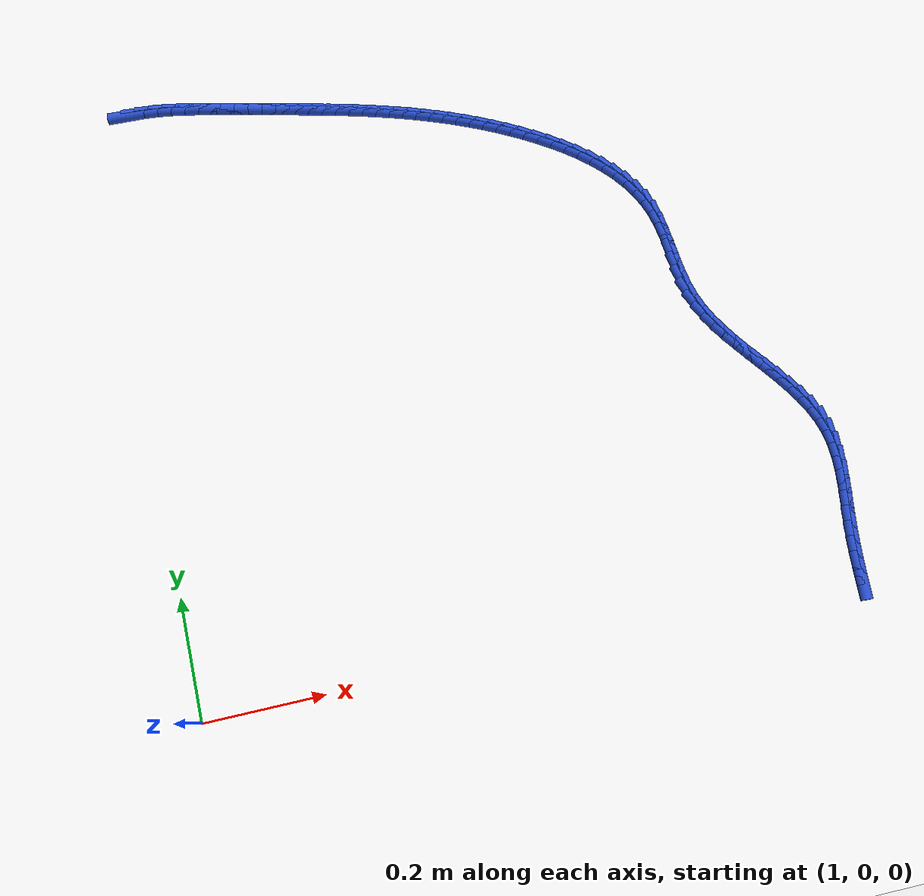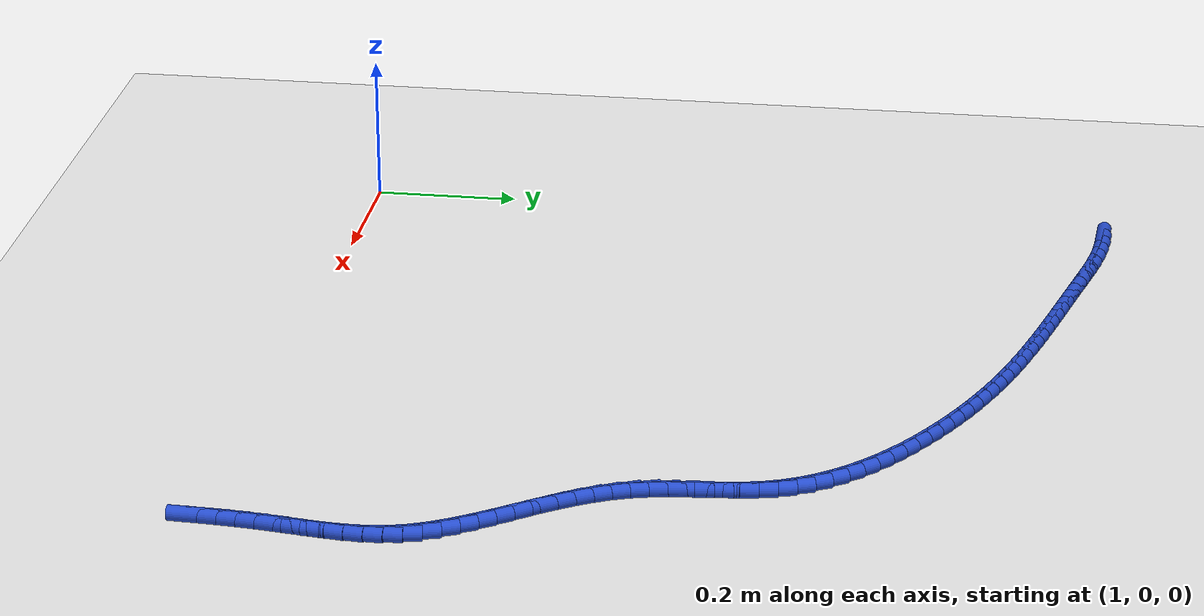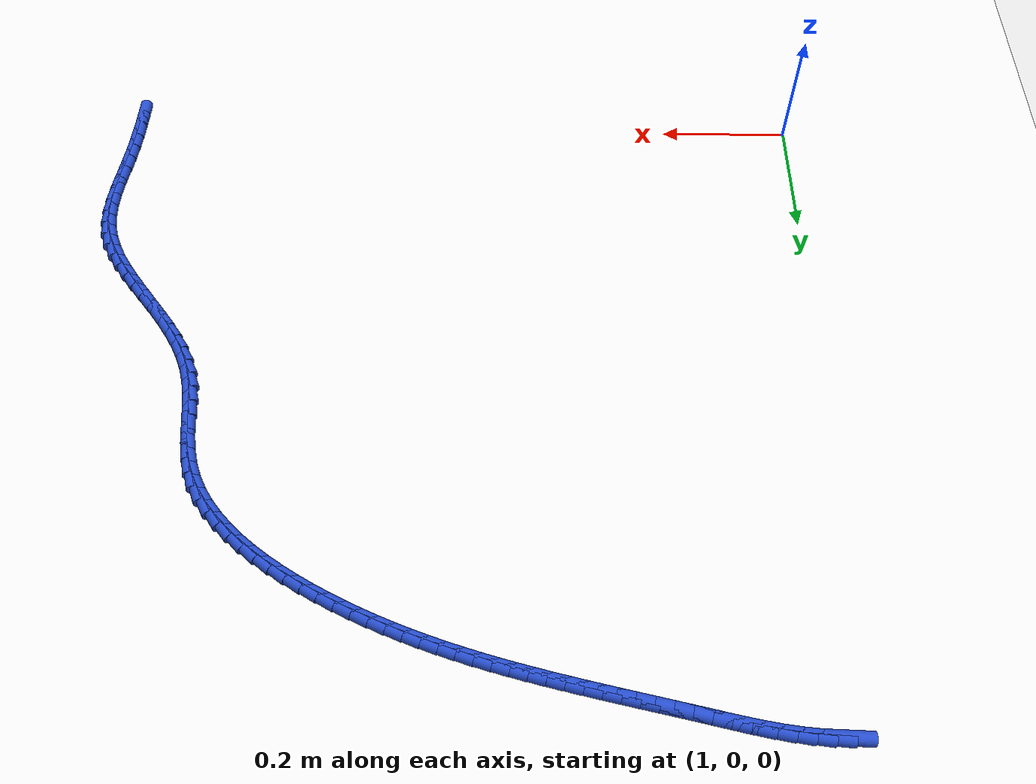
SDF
<sdf version="1.6">
 <world name="default">
  <model name="ground_plane">
   <static>1</static>
   <link name="link">
    <collision name="collision">
     <geometry><plane><normal>0 0 1</normal><size>100 100</size></plane></geometry>
     <surface><friction><ode><mu>100</mu><mu2>50</mu2></ode></friction></surface>
    </collision>
    <visual name="visual">
     <cast_shadows>0</cast_shadows>
     <geometry><plane><normal>0 0 1</normal><size>100 100</size></plane></geometry>
     <material>
      <script><uri>file://media/materials/scripts/gazebo.material</uri><name>Gazebo/WhiteGlow</name></script>
     </material>
    </visual>
   </link>
  </model>
  <model name="line">
   <link name="link_68">
    <pose>1.0566559451986737 1.056539879496222 0.01 0 1.57 -0.03050722279257772</pose>
    <collision name="collision">
     <geometry><cylinder><radius>0.01</radius><length>0.08</length></cylinder></geometry>
    </collision>
    <visual name="visual">
     <material>
      <script><name>Gazebo/Blue</name><uri>file://media/materials/scripts/gazebo.material</uri></script>
     </material>
     <geometry><cylinder><radius>0.01</radius><length>0.08</length></cylinder></geometry>
    </visual>
   </link>
   <link name="link_69">
    <pose>1.080787537617207 1.0558034631571953 0.01 0 1.57 -0.08710678217348848</pose>
    <collision name="collision">
     <geometry><cylinder><radius>0.01</radius><length>0.08</length></cylinder></geometry>
    </collision>
    <visual name="visual">
     <material>
      <script><name>Gazebo/Blue</name><uri>file://media/materials/scripts/gazebo.material</uri></script>
     </material>
     <geometry><cylinder><radius>0.01</radius><length>0.08</length></cylinder></geometry>
    </visual>
   </link>
   <link name="link_70">
    <pose>1.1047899032811292 1.0537073902544252 0.01 0 1.57 -0.13543388009078403</pose>
    <collision name="collision">
     <geometry><cylinder><radius>0.01</radius><length>0.08</length></cylinder></geometry>
    </collision>
    <visual name="visual">
     <material>
      <script><name>Gazebo/Blue</name><uri>file://media/materials/scripts/gazebo.material</uri></script>
     </material>
     <geometry><cylinder><radius>0.01</radius><length>0.08</length></cylinder></geometry>
    </visual>
   </link>
   <link name="link_71">
    <pose>1.1286754459439066 1.0504525537212743 0.01 0 1.57 -0.17358100366658533</pose>
    <collision name="collision">
     <geometry><cylinder><radius>0.01</radius><length>0.08</length></cylinder></geometry>
    </collision>
    <visual name="visual">
     <material>
      <script><name>Gazebo/Blue</name><uri>file://media/materials/scripts/gazebo.material</uri></script>
     </material>
     <geometry><cylinder><radius>0.01</radius><length>0.08</length></cylinder></geometry>
    </visual>
   </link>
   <link name="link_72">
    <pose>1.1524690013365628 1.046280457827342 0.01 0 1.57 -0.20154885319310645</pose>
    <collision name="collision">
     <geometry><cylinder><radius>0.01</radius><length>0.08</length></cylinder></geometry>
    </collision>
    <visual name="visual">
     <material>
      <script><name>Gazebo/Blue</name><uri>file://media/materials/scripts/gazebo.material</uri></script>
     </material>
     <geometry><cylinder><radius>0.01</radius><length>0.08</length></cylinder></geometry>
    </visual>
   </link>
   <link name="link_73">
    <pose>1.1761954051901238 1.0414326068422268 0.01 0 1.57 -0.21943212921030308</pose>
    <collision name="collision">
     <geometry><cylinder><radius>0.01</radius><length>0.08</length></cylinder></geometry>
    </collision>
    <visual name="visual">
     <material>
      <script><name>Gazebo/Blue</name><uri>file://media/materials/scripts/gazebo.material</uri></script>
     </material>
     <geometry><cylinder><radius>0.01</radius><length>0.08</length></cylinder></geometry>
    </visual>
   </link>
   <link name="link_74">
    <pose>1.1998794932356127 1.0361505050355284 0.01 0 1.57 -0.22733328139425454</pose>
    <collision name="collision">
     <geometry><cylinder><radius>0.01</radius><length>0.08</length></cylinder></geometry>
    </collision>
    <visual name="visual">
     <material>
      <script><name>Gazebo/Blue</name><uri>file://media/materials/scripts/gazebo.material</uri></script>
     </material>
     <geometry><cylinder><radius>0.01</radius><length>0.08</length></cylinder></geometry>
    </visual>
   </link>
   <link name="link_75">
    <pose>1.2235461012040543 1.0306756566768456 0.01 0 1.57 -0.2263782300799881</pose>
    <collision name="collision">
     <geometry><cylinder><radius>0.01</radius><length>0.08</length></cylinder></geometry>
    </collision>
    <visual name="visual">
     <material>
      <script><name>Gazebo/Blue</name><uri>file://media/materials/scripts/gazebo.material</uri></script>
     </material>
     <geometry><cylinder><radius>0.01</radius><length>0.08</length></cylinder></geometry>
    </visual>
   </link>
   <link name="link_76">
    <pose>1.2472163113289658 1.0252237858002047 0.01 0 1.57 -0.22391142568460923</pose>
    <collision name="collision">
     <geometry><cylinder><radius>0.01</radius><length>0.08</length></cylinder></geometry>
    </collision>
    <visual name="visual">
     <material>
      <script><name>Gazebo/Blue</name><uri>file://media/materials/scripts/gazebo.material</uri></script>
     </material>
     <geometry><cylinder><radius>0.01</radius><length>0.08</length></cylinder></geometry>
    </visual>
   </link>
   <link name="link_77">
    <pose>1.2708854351372145 1.019833614886543 0.01 0 1.57 -0.2230144385574613</pose>
    <collision name="collision">
     <geometry><cylinder><radius>0.01</radius><length>0.08</length></cylinder></geometry>
    </collision>
    <visual name="visual">
     <material>
      <script><name>Gazebo/Blue</name><uri>file://media/materials/scripts/gazebo.material</uri></script>
     </material>
     <geometry><cylinder><radius>0.01</radius><length>0.08</length></cylinder></geometry>
    </visual>
   </link>
   <link name="link_78">
    <pose>1.2945379618577029 1.0144695353721083 0.01 0 1.57 -0.22370138353793034</pose>
    <collision name="collision">
     <geometry><cylinder><radius>0.01</radius><length>0.08</length></cylinder></geometry>
    </collision>
    <visual name="visual">
     <material>
      <script><name>Gazebo/Blue</name><uri>file://media/materials/scripts/gazebo.material</uri></script>
     </material>
     <geometry><cylinder><radius>0.01</radius><length>0.08</length></cylinder></geometry>
    </visual>
   </link>
   <link name="link_79">
    <pose>1.318158343468812 1.009095682844519 0.01 0 1.57 -0.22597860267105793</pose>
    <collision name="collision">
     <geometry><cylinder><radius>0.01</radius><length>0.08</length></cylinder></geometry>
    </collision>
    <visual name="visual">
     <material>
      <script><name>Gazebo/Blue</name><uri>file://media/materials/scripts/gazebo.material</uri></script>
     </material>
     <geometry><cylinder><radius>0.01</radius><length>0.08</length></cylinder></geometry>
    </visual>
   </link>
   <link name="link_80">
    <pose>1.3417310319489253 1.0036761928913946 0.01 0 1.57 -0.2298552572701455</pose>
    <collision name="collision">
     <geometry><cylinder><radius>0.01</radius><length>0.08</length></cylinder></geometry>
    </collision>
    <visual name="visual">
     <material>
      <script><name>Gazebo/Blue</name><uri>file://media/materials/scripts/gazebo.material</uri></script>
     </material>
     <geometry><cylinder><radius>0.01</radius><length>0.08</length></cylinder></geometry>
    </visual>
   </link>
   <link name="link_81">
    <pose>1.3652404792764232 0.9981752011003525 0.01 0 1.57 -0.23534320088937022</pose>
    <collision name="collision">
     <geometry><cylinder><radius>0.01</radius><length>0.08</length></cylinder></geometry>
    </collision>
    <visual name="visual">
     <material>
      <script><name>Gazebo/Blue</name><uri>file://media/materials/scripts/gazebo.material</uri></script>
     </material>
     <geometry><cylinder><radius>0.01</radius><length>0.08</length></cylinder></geometry>
    </visual>
   </link>
   <link name="link_82">
    <pose>1.38867113742969 0.9925568430590116 0.01 0 1.57 -0.24245673517450567</pose>
    <collision name="collision">
     <geometry><cylinder><radius>0.01</radius><length>0.08</length></cylinder></geometry>
    </collision>
    <visual name="visual">
     <material>
      <script><name>Gazebo/Blue</name><uri>file://media/materials/scripts/gazebo.material</uri></script>
     </material>
     <geometry><cylinder><radius>0.01</radius><length>0.08</length></cylinder></geometry>
    </visual>
   </link>
   <link name="link_83">
    <pose>1.4120074583871063 0.9867852543549904 0.01 0 1.57 -0.25121223921615465</pose>
    <collision name="collision">
     <geometry><cylinder><radius>0.01</radius><length>0.08</length></cylinder></geometry>
    </collision>
    <visual name="visual">
     <material>
      <script><name>Gazebo/Blue</name><uri>file://media/materials/scripts/gazebo.material</uri></script>
     </material>
     <geometry><cylinder><radius>0.01</radius><length>0.08</length></cylinder></geometry>
    </visual>
   </link>
   <link name="link_84">
    <pose>1.4352338941270542 0.9808245705759071 0.01 0 1.57 -0.2616369609576843</pose>
    <collision name="collision">
     <geometry><cylinder><radius>0.01</radius><length>0.08</length></cylinder></geometry>
    </collision>
    <visual name="visual">
     <material>
      <script><name>Gazebo/Blue</name><uri>file://media/materials/scripts/gazebo.material</uri></script>
     </material>
     <geometry><cylinder><radius>0.01</radius><length>0.08</length></cylinder></geometry>
    </visual>
   </link>
   <link name="link_85">
    <pose>1.458337717522701 0.9746379416914022 0.01 0 1.57 -0.27378797087168233</pose>
    <collision name="collision">
     <geometry><cylinder><radius>0.01</radius><length>0.08</length></cylinder></geometry>
    </collision>
    <visual name="visual">
     <material>
      <script><name>Gazebo/Blue</name><uri>file://media/materials/scripts/gazebo.material</uri></script>
     </material>
     <geometry><cylinder><radius>0.01</radius><length>0.08</length></cylinder></geometry>
    </visual>
   </link>
   <link name="link_86">
    <pose>1.4813216268809255 0.9681831280391188 0.01 0 1.57 -0.2876615101169753</pose>
    <collision name="collision">
     <geometry><cylinder><radius>0.01</radius><length>0.08</length></cylinder></geometry>
    </collision>
    <visual name="visual">
     <material>
      <script><name>Gazebo/Blue</name><uri>file://media/materials/scripts/gazebo.material</uri></script>
     </material>
     <geometry><cylinder><radius>0.01</radius><length>0.08</length></cylinder></geometry>
    </visual>
   </link>
   <link name="link_87">
    <pose>1.50419356655007 0.9614160569947604 0.01 0 1.57 -0.30322206928134615</pose>
    <collision name="collision">
     <geometry><cylinder><radius>0.01</radius><length>0.08</length></cylinder></geometry>
    </collision>
    <visual name="visual">
     <material>
      <script><name>Gazebo/Blue</name><uri>file://media/materials/scripts/gazebo.material</uri></script>
     </material>
     <geometry><cylinder><radius>0.01</radius><length>0.08</length></cylinder></geometry>
    </visual>
   </link>
   <link name="link_88">
    <pose>1.52696148523075 0.9542926544133484 0.01 0 1.57 -0.3204211605542874</pose>
    <collision name="collision">
     <geometry><cylinder><radius>0.01</radius><length>0.08</length></cylinder></geometry>
    </collision>
    <visual name="visual">
     <material>
      <script><name>Gazebo/Blue</name><uri>file://media/materials/scripts/gazebo.material</uri></script>
     </material>
     <geometry><cylinder><radius>0.01</radius><length>0.08</length></cylinder></geometry>
    </visual>
   </link>
   <link name="link_89">
    <pose>1.5496333316235822 0.9467688461499053 0.01 0 1.57 -0.33919663083866486</pose>
    <collision name="collision">
     <geometry><cylinder><radius>0.01</radius><length>0.08</length></cylinder></geometry>
    </collision>
    <visual name="visual">
     <material>
      <script><name>Gazebo/Blue</name><uri>file://media/materials/scripts/gazebo.material</uri></script>
     </material>
     <geometry><cylinder><radius>0.01</radius><length>0.08</length></cylinder></geometry>
    </visual>
   </link>
   <link name="link_90">
    <pose>1.5722170544291822 0.9388005580594526 0.01 0 1.57 -0.3594721964824236</pose>
    <collision name="collision">
     <geometry><cylinder><radius>0.01</radius><length>0.08</length></cylinder></geometry>
    </collision>
    <visual name="visual">
     <material>
      <script><name>Gazebo/Blue</name><uri>file://media/materials/scripts/gazebo.material</uri></script>
     </material>
     <geometry><cylinder><radius>0.01</radius><length>0.08</length></cylinder></geometry>
    </visual>
   </link>
   <link name="link_91">
    <pose>1.5947206023481675 0.9303437159970125 0.01 0 1.57 -0.3811572939427457</pose>
    <collision name="collision">
     <geometry><cylinder><radius>0.01</radius><length>0.08</length></cylinder></geometry>
    </collision>
    <visual name="visual">
     <material>
      <script><name>Gazebo/Blue</name><uri>file://media/materials/scripts/gazebo.material</uri></script>
     </material>
     <geometry><cylinder><radius>0.01</radius><length>0.08</length></cylinder></geometry>
    </visual>
   </link>
   <link name="link_92">
    <pose>1.6171519240811534 0.9213542458176074 0.01 0 1.57 -0.4041473201245102</pose>
    <collision name="collision">
     <geometry><cylinder><radius>0.01</radius><length>0.08</length></cylinder></geometry>
    </collision>
    <visual name="visual">
     <material>
      <script><name>Gazebo/Blue</name><uri>file://media/materials/scripts/gazebo.material</uri></script>
     </material>
     <geometry><cylinder><radius>0.01</radius><length>0.08</length></cylinder></geometry>
    </visual>
   </link>
   <link name="link_93">
    <pose>1.639518968328756 0.9117880733762588 0.01 0 1.57 -0.4283243215328003</pose>
    <collision name="collision">
     <geometry><cylinder><radius>0.01</radius><length>0.08</length></cylinder></geometry>
    </collision>
    <visual name="visual">
     <material>
      <script><name>Gazebo/Blue</name><uri>file://media/materials/scripts/gazebo.material</uri></script>
     </material>
     <geometry><cylinder><radius>0.01</radius><length>0.08</length></cylinder></geometry>
    </visual>
   </link>
   <link name="link_94">
    <pose>1.6618296837915922 0.9016011245279891 0.01 0 1.57 -0.45355816817101086</pose>
    <collision name="collision">
     <geometry><cylinder><radius>0.01</radius><length>0.08</length></cylinder></geometry>
    </collision>
    <visual name="visual">
     <material>
      <script><name>Gazebo/Blue</name><uri>file://media/materials/scripts/gazebo.material</uri></script>
     </material>
     <geometry><cylinder><radius>0.01</radius><length>0.08</length></cylinder></geometry>
    </visual>
   </link>
   <link name="link_95">
    <pose>1.6840920191702784 0.8907493251278199 0.01 0 1.57 -0.47970821731827806</pose>
    <collision name="collision">
     <geometry><cylinder><radius>0.01</radius><length>0.08</length></cylinder></geometry>
    </collision>
    <visual name="visual">
     <material>
      <script><name>Gazebo/Blue</name><uri>file://media/materials/scripts/gazebo.material</uri></script>
     </material>
     <geometry><cylinder><radius>0.01</radius><length>0.08</length></cylinder></geometry>
    </visual>
   </link>
   <link name="link_96">
    <pose>1.706313923165431 0.8791886010307737 0.01 0 1.57 -0.5067485622339222</pose>
    <collision name="collision">
     <geometry><cylinder><radius>0.01</radius><length>0.08</length></cylinder></geometry>
    </collision>
    <visual name="visual">
     <material>
      <script><name>Gazebo/Blue</name><uri>file://media/materials/scripts/gazebo.material</uri></script>
     </material>
     <geometry><cylinder><radius>0.01</radius><length>0.08</length></cylinder></geometry>
    </visual>
   </link>
   <link name="link_97">
    <pose>1.7284955259138652 0.8668756444614445 0.01 0 1.57 -0.5366111621637293</pose>
    <collision name="collision">
     <geometry><cylinder><radius>0.01</radius><length>0.08</length></cylinder></geometry>
    </collision>
    <visual name="visual">
     <material>
      <script><name>Gazebo/Blue</name><uri>file://media/materials/scripts/gazebo.material</uri></script>
     </material>
     <geometry><cylinder><radius>0.01</radius><length>0.08</length></cylinder></geometry>
    </visual>
   </link>
   <link name="link_98">
    <pose>1.7505122727502023 0.8537793691522316 0.01 0 1.57 -0.5712600358950919</pose>
    <collision name="collision">
     <geometry><cylinder><radius>0.01</radius><length>0.08</length></cylinder></geometry>
    </collision>
    <visual name="visual">
     <material>
      <script><name>Gazebo/Blue</name><uri>file://media/materials/scripts/gazebo.material</uri></script>
     </material>
     <geometry><cylinder><radius>0.01</radius><length>0.08</length></cylinder></geometry>
    </visual>
   </link>
   <link name="link_99">
    <pose>1.7721395314804569 0.8398784983574292 0.01 0 1.57 -0.6113404560718967</pose>
    <collision name="collision">
     <geometry><cylinder><radius>0.01</radius><length>0.08</length></cylinder></geometry>
    </collision>
    <visual name="visual">
     <material>
      <script><name>Gazebo/Blue</name><uri>file://media/materials/scripts/gazebo.material</uri></script>
     </material>
     <geometry><cylinder><radius>0.01</radius><length>0.08</length></cylinder></geometry>
    </visual>
   </link>
   <link name="link_100">
    <pose>1.7931498474855163 0.8251520319832579 0.01 0 1.57 -0.6575875683192935</pose>
    <collision name="collision">
     <geometry><cylinder><radius>0.01</radius><length>0.08</length></cylinder></geometry>
    </collision>
    <visual name="visual">
     <material>
      <script><name>Gazebo/Blue</name><uri>file://media/materials/scripts/gazebo.material</uri></script>
     </material>
     <geometry><cylinder><radius>0.01</radius><length>0.08</length></cylinder></geometry>
    </visual>
   </link>
   <link name="link_101">
    <pose>1.8133157661462664 0.809578969935938 0.01 0 1.57 -0.7108656102291798</pose>
    <collision name="collision">
     <geometry><cylinder><radius>0.01</radius><length>0.08</length></cylinder></geometry>
    </collision>
    <visual name="visual">
     <material>
      <script><name>Gazebo/Blue</name><uri>file://media/materials/scripts/gazebo.material</uri></script>
     </material>
     <geometry><cylinder><radius>0.01</radius><length>0.08</length></cylinder></geometry>
    </visual>
   </link>
   <link name="link_102">
    <pose>1.8324098328435947 0.7931383121216901 0.01 0 1.57 -0.7721457147903141</pose>
    <collision name="collision">
     <geometry><cylinder><radius>0.01</radius><length>0.08</length></cylinder></geometry>
    </collision>
    <visual name="visual">
     <material>
      <script><name>Gazebo/Blue</name><uri>file://media/materials/scripts/gazebo.material</uri></script>
     </material>
     <geometry><cylinder><radius>0.01</radius><length>0.08</length></cylinder></geometry>
    </visual>
   </link>
   <link name="link_103">
    <pose>1.8502045929583888 0.7758090584467343 0.01 0 1.57 -0.8424509499833926</pose>
    <collision name="collision">
     <geometry><cylinder><radius>0.01</radius><length>0.08</length></cylinder></geometry>
    </collision>
    <visual name="visual">
     <material>
      <script><name>Gazebo/Blue</name><uri>file://media/materials/scripts/gazebo.material</uri></script>
     </material>
     <geometry><cylinder><radius>0.01</radius><length>0.08</length></cylinder></geometry>
    </visual>
   </link>
   <link name="link_104">
    <pose>1.866472591871535 0.757570208817291 0.01 0 1.57 -0.9227469272524111</pose>
    <collision name="collision">
     <geometry><cylinder><radius>0.01</radius><length>0.08</length></cylinder></geometry>
    </collision>
    <visual name="visual">
     <material>
      <script><name>Gazebo/Blue</name><uri>file://media/materials/scripts/gazebo.material</uri></script>
     </material>
     <geometry><cylinder><radius>0.01</radius><length>0.08</length></cylinder></geometry>
    </visual>
   </link>
   <link name="link_105">
    <pose>1.8809863749639206 0.7384007631395809 0.01 0 1.57 -1.0137545364422091</pose>
    <collision name="collision">
     <geometry><cylinder><radius>0.01</radius><length>0.08</length></cylinder></geometry>
    </collision>
    <visual name="visual">
     <material>
      <script><name>Gazebo/Blue</name><uri>file://media/materials/scripts/gazebo.material</uri></script>
     </material>
     <geometry><cylinder><radius>0.01</radius><length>0.08</length></cylinder></geometry>
    </visual>
   </link>
   <link name="link_106">
    <pose>1.8935184876164324 0.7182797213198243 0.01 0 1.57 -1.1156737563688677</pose>
    <collision name="collision">
     <geometry><cylinder><radius>0.01</radius><length>0.08</length></cylinder></geometry>
    </collision>
    <visual name="visual">
     <material>
      <script><name>Gazebo/Blue</name><uri>file://media/materials/scripts/gazebo.material</uri></script>
     </material>
     <geometry><cylinder><radius>0.01</radius><length>0.08</length></cylinder></geometry>
    </visual>
   </link>
   <link name="link_107">
    <pose>1.9038414752099582 0.6971860832642416 0.01 0 1.57 -1.2278386811202173</pose>
    <collision name="collision">
     <geometry><cylinder><radius>0.01</radius><length>0.08</length></cylinder></geometry>
    </collision>
    <visual name="visual">
     <material>
      <script><name>Gazebo/Blue</name><uri>file://media/materials/scripts/gazebo.material</uri></script>
     </material>
     <geometry><cylinder><radius>0.01</radius><length>0.08</length></cylinder></geometry>
    </visual>
   </link>
   <link name="link_108">
    <pose>1.9117280996742412 0.6750989119849276 0.01 0 1.57 -1.3386540623060772</pose>
    <collision name="collision">
     <geometry><cylinder><radius>0.01</radius><length>0.08</length></cylinder></geometry>
    </collision>
    <visual name="visual">
     <material>
      <script><name>Gazebo/Blue</name><uri>file://media/materials/scripts/gazebo.material</uri></script>
     </material>
     <geometry><cylinder><radius>0.01</radius><length>0.08</length></cylinder></geometry>
    </visual>
   </link>
   <link name="link_109">
    <pose>1.9171740659767254 0.6520622397370925 0.01 0 1.57 -1.4185462248502065</pose>
    <collision name="collision">
     <geometry><cylinder><radius>0.01</radius><length>0.08</length></cylinder></geometry>
    </collision>
    <visual name="visual">
     <material>
      <script><name>Gazebo/Blue</name><uri>file://media/materials/scripts/gazebo.material</uri></script>
     </material>
     <geometry><cylinder><radius>0.01</radius><length>0.08</length></cylinder></geometry>
    </visual>
   </link>
   <link name="link_110">
    <pose>1.9208189003600569 0.6283077188128126 0.01 0 1.57 -1.4638503767033464</pose>
    <collision name="collision">
     <geometry><cylinder><radius>0.01</radius><length>0.08</length></cylinder></geometry>
    </collision>
    <visual name="visual">
     <material>
      <script><name>Gazebo/Blue</name><uri>file://media/materials/scripts/gazebo.material</uri></script>
     </material>
     <geometry><cylinder><radius>0.01</radius><length>0.08</length></cylinder></geometry>
    </visual>
   </link>
   <link name="link_111">
    <pose>1.923417661526899 0.6041006695503145 0.01 0 1.57 -1.4764749899356728</pose>
    <collision name="collision">
     <geometry><cylinder><radius>0.01</radius><length>0.08</length></cylinder></geometry>
    </collision>
    <visual name="visual">
     <material>
      <script><name>Gazebo/Blue</name><uri>file://media/materials/scripts/gazebo.material</uri></script>
     </material>
     <geometry><cylinder><radius>0.01</radius><length>0.08</length></cylinder></geometry>
    </visual>
   </link>
   <link name="link_112">
    <pose>1.9257254081799133 0.5797064122878256 0.01 0 1.57 -1.4572964956900063</pose>
    <collision name="collision">
     <geometry><cylinder><radius>0.01</radius><length>0.08</length></cylinder></geometry>
    </collision>
    <visual name="visual">
     <material>
      <script><name>Gazebo/Blue</name><uri>file://media/materials/scripts/gazebo.material</uri></script>
     </material>
     <geometry><cylinder><radius>0.01</radius><length>0.08</length></cylinder></geometry>
    </visual>
   </link>
   <link name="link_113">
    <pose>1.9284971990217634 0.555390267363573 0.01 0 1.57 -1.4058326617018586</pose>
    <collision name="collision">
     <geometry><cylinder><radius>0.01</radius><length>0.08</length></cylinder></geometry>
    </collision>
    <visual name="visual">
     <material>
      <script><name>Gazebo/Blue</name><uri>file://media/materials/scripts/gazebo.material</uri></script>
     </material>
     <geometry><cylinder><radius>0.01</radius><length>0.08</length></cylinder></geometry>
    </visual>
   </link>
   <link name="link_114">
    <pose>1.9324880927551094 0.531417555115784 0.01 0 1.57 -1.3208393491953556</pose>
    <collision name="collision">
     <geometry><cylinder><radius>0.01</radius><length>0.08</length></cylinder></geometry>
    </collision>
    <visual name="visual">
     <material>
      <script><name>Gazebo/Blue</name><uri>file://media/materials/scripts/gazebo.material</uri></script>
     </material>
     <geometry><cylinder><radius>0.01</radius><length>0.08</length></cylinder></geometry>
    </visual>
   </link>
   <link name="link_115">
    <pose>1.9384528455342789 0.5080534970173942 0.01 0 1.57 -1.2138090527508014</pose>
    <collision name="collision">
     <geometry><cylinder><radius>0.01</radius><length>0.08</length></cylinder></geometry>
    </collision>
    <visual name="visual">
     <material>
      <script><name>Gazebo/Blue</name><uri>file://media/materials/scripts/gazebo.material</uri></script>
     </material>
     <geometry><cylinder><radius>0.01</radius><length>0.08</length></cylinder></geometry>
    </visual>
   </link>
   <link name="link_116">
    <pose>1.946874108458344 0.4854743973585931 0.01 0 1.57 -1.1199532992158157</pose>
    <collision name="collision">
     <geometry><cylinder><radius>0.01</radius><length>0.08</length></cylinder></geometry>
    </collision>
    <visual name="visual">
     <material>
      <script><name>Gazebo/Blue</name><uri>file://media/materials/scripts/gazebo.material</uri></script>
     </material>
     <geometry><cylinder><radius>0.01</radius><length>0.08</length></cylinder></geometry>
    </visual>
   </link>
   <link name="link_117">
    <pose>1.957461488337539 0.4636039487306179 0.01 0 1.57 -1.0458172265220949</pose>
    <collision name="collision">
     <geometry><cylinder><radius>0.01</radius><length>0.08</length></cylinder></geometry>
    </collision>
    <visual name="visual">
     <material>
      <script><name>Gazebo/Blue</name><uri>file://media/materials/scripts/gazebo.material</uri></script>
     </material>
     <geometry><cylinder><radius>0.01</radius><length>0.08</length></cylinder></geometry>
    </visual>
   </link>
   <link name="link_118">
    <pose>1.9697882393534185 0.4423212870677536 0.01 0 1.57 -0.9907438574594235</pose>
    <collision name="collision">
     <geometry><cylinder><radius>0.01</radius><length>0.08</length></cylinder></geometry>
    </collision>
    <visual name="visual">
     <material>
      <script><name>Gazebo/Blue</name><uri>file://media/materials/scripts/gazebo.material</uri></script>
     </material>
     <geometry><cylinder><radius>0.01</radius><length>0.08</length></cylinder></geometry>
    </visual>
   </link>
   <link name="link_119">
    <pose>1.9834276156875401 0.42150554830428505 0.01 0 1.57 -0.9536573687314313</pose>
    <collision name="collision">
     <geometry><cylinder><radius>0.01</radius><length>0.08</length></cylinder></geometry>
    </collision>
    <visual name="visual">
     <material>
      <script><name>Gazebo/Blue</name><uri>file://media/materials/scripts/gazebo.material</uri></script>
     </material>
     <geometry><cylinder><radius>0.01</radius><length>0.08</length></cylinder></geometry>
    </visual>
   </link>
   <link name="link_120">
    <pose>1.9979528715214583 0.4010358683744966 0.01 0 1.57 -0.9336152356105335</pose>
    <collision name="collision">
     <geometry><cylinder><radius>0.01</radius><length>0.08</length></cylinder></geometry>
    </collision>
    <visual name="visual">
     <material>
      <script><name>Gazebo/Blue</name><uri>file://media/materials/scripts/gazebo.material</uri></script>
     </material>
     <geometry><cylinder><radius>0.01</radius><length>0.08</length></cylinder></geometry>
    </visual>
   </link>
   <link name="link_121">
    <pose>2.01293726103673 0.3807913832126733 0.01 0 1.57 -0.9301082922916987</pose>
    <collision name="collision">
     <geometry><cylinder><radius>0.01</radius><length>0.08</length></cylinder></geometry>
    </collision>
    <visual name="visual">
     <material>
      <script><name>Gazebo/Blue</name><uri>file://media/materials/scripts/gazebo.material</uri></script>
     </material>
     <geometry><cylinder><radius>0.01</radius><length>0.08</length></cylinder></geometry>
    </visual>
   </link>
   <link name="link_122">
    <pose>2.027954038414911 0.3606512287530993 0.01 0 1.57 -0.9432013549053261</pose>
    <collision name="collision">
     <geometry><cylinder><radius>0.01</radius><length>0.08</length></cylinder></geometry>
    </collision>
    <visual name="visual">
     <material>
      <script><name>Gazebo/Blue</name><uri>file://media/materials/scripts/gazebo.material</uri></script>
     </material>
     <geometry><cylinder><radius>0.01</radius><length>0.08</length></cylinder></geometry>
    </visual>
   </link>
   <link name="link_123">
    <pose>2.042576457837557 0.34049454093006015 0.01 0 1.57 -0.9735745971680725</pose>
    <collision name="collision">
     <geometry><cylinder><radius>0.01</radius><length>0.08</length></cylinder></geometry>
    </collision>
    <visual name="visual">
     <material>
      <script><name>Gazebo/Blue</name><uri>file://media/materials/scripts/gazebo.material</uri></script>
     </material>
     <geometry><cylinder><radius>0.01</radius><length>0.08</length></cylinder></geometry>
    </visual>
   </link>
   <link name="link_124">
    <pose>2.0563777734862234 0.32020045567784006 0.01 0 1.57 -1.022470188958324</pose>
    <collision name="collision">
     <geometry><cylinder><radius>0.01</radius><length>0.08</length></cylinder></geometry>
    </collision>
    <visual name="visual">
     <material>
      <script><name>Gazebo/Blue</name><uri>file://media/materials/scripts/gazebo.material</uri></script>
     </material>
     <geometry><cylinder><radius>0.01</radius><length>0.08</length></cylinder></geometry>
    </visual>
   </link>
   <link name="link_125">
    <pose>2.0689312395424673 0.29964810893072386 0.01 0 1.57 -1.0914837015061085</pose>
    <collision name="collision">
     <geometry><cylinder><radius>0.01</radius><length>0.08</length></cylinder></geometry>
    </collision>
    <visual name="visual">
     <material>
      <script><name>Gazebo/Blue</name><uri>file://media/materials/scripts/gazebo.material</uri></script>
     </material>
     <geometry><cylinder><radius>0.01</radius><length>0.08</length></cylinder></geometry>
    </visual>
   </link>
   <link name="link_126">
    <pose>2.0798101101878443 0.27871663662299606 0.01 0 1.57 -1.182073441854216</pose>
    <collision name="collision">
     <geometry><cylinder><radius>0.01</radius><length>0.08</length></cylinder></geometry>
    </collision>
    <visual name="visual">
     <material>
      <script><name>Gazebo/Blue</name><uri>file://media/materials/scripts/gazebo.material</uri></script>
     </material>
     <geometry><cylinder><radius>0.01</radius><length>0.08</length></cylinder></geometry>
    </visual>
   </link>
   <link name="link_127">
    <pose>2.0885876396039103 0.257285174688942 0.01 0 1.57 -1.2946453144205352</pose>
    <collision name="collision">
     <geometry><cylinder><radius>0.01</radius><length>0.08</length></cylinder></geometry>
    </collision>
    <visual name="visual">
     <material>
      <script><name>Gazebo/Blue</name><uri>file://media/materials/scripts/gazebo.material</uri></script>
     </material>
     <geometry><cylinder><radius>0.01</radius><length>0.08</length></cylinder></geometry>
    </visual>
   </link>
   <link name="link_128">
    <pose>2.094837081972221 0.23523285906284602 0.01 0 1.57 -1.4225150524761774</pose>
    <collision name="collision">
     <geometry><cylinder><radius>0.01</radius><length>0.08</length></cylinder></geometry>
    </collision>
    <visual name="visual">
     <material>
      <script><name>Gazebo/Blue</name><uri>file://media/materials/scripts/gazebo.material</uri></script>
     </material>
     <geometry><cylinder><radius>0.01</radius><length>0.08</length></cylinder></geometry>
    </visual>
   </link>
   <link name="link_129">
    <pose>2.098238072420366 0.21246513192215197 0.01 0 1.57 -1.5335146167547775</pose>
    <collision name="collision">
     <geometry><cylinder><radius>0.01</radius><length>0.08</length></cylinder></geometry>
    </collision>
    <visual name="visual">
     <material>
      <script><name>Gazebo/Blue</name><uri>file://media/materials/scripts/gazebo.material</uri></script>
     </material>
     <geometry><cylinder><radius>0.01</radius><length>0.08</length></cylinder></geometry>
    </visual>
   </link>
   <link name="link_130">
    <pose>2.0991115814397427 0.18904602704041076 0.01 0 1.57 1.5251510529452754</pose>
    <collision name="collision">
     <geometry><cylinder><radius>0.01</radius><length>0.08</length></cylinder></geometry>
    </collision>
    <visual name="visual">
     <material>
      <script><name>Gazebo/Blue</name><uri>file://media/materials/scripts/gazebo.material</uri></script>
     </material>
     <geometry><cylinder><radius>0.01</radius><length>0.08</length></cylinder></geometry>
    </visual>
   </link>
   <link name="link_131">
    <pose>2.0980177402159126 0.16509871866330952 0.01 0 1.57 1.4684682178631985</pose>
    <collision name="collision">
     <geometry><cylinder><radius>0.01</radius><length>0.08</length></cylinder></geometry>
    </collision>
    <visual name="visual">
     <material>
      <script><name>Gazebo/Blue</name><uri>file://media/materials/scripts/gazebo.material</uri></script>
     </material>
     <geometry><cylinder><radius>0.01</radius><length>0.08</length></cylinder></geometry>
    </visual>
   </link>
   <link name="link_132">
    <pose>2.0955170876299256 0.1407464818528677 0.01 0 1.57 1.4357565216922383</pose>
    <collision name="collision">
     <geometry><cylinder><radius>0.01</radius><length>0.08</length></cylinder></geometry>
    </collision>
    <visual name="visual">
     <material>
      <script><name>Gazebo/Blue</name><uri>file://media/materials/scripts/gazebo.material</uri></script>
     </material>
     <geometry><cylinder><radius>0.01</radius><length>0.08</length></cylinder></geometry>
    </visual>
   </link>
   <link name="link_133">
    <pose>2.092170162562832 0.11611259167110333 0.01 0 1.57 1.4253077568202677</pose>
    <collision name="collision">
     <geometry><cylinder><radius>0.01</radius><length>0.08</length></cylinder></geometry>
    </collision>
    <visual name="visual">
     <material>
      <script><name>Gazebo/Blue</name><uri>file://media/materials/scripts/gazebo.material</uri></script>
     </material>
     <geometry><cylinder><radius>0.01</radius><length>0.08</length></cylinder></geometry>
    </visual>
   </link>
   <link name="link_134">
    <pose>2.0885375038956826 0.0913203231800351 0.01 0 1.57 1.436318801822123</pose>
    <collision name="collision">
     <geometry><cylinder><radius>0.01</radius><length>0.08</length></cylinder></geometry>
    </collision>
    <visual name="visual">
     <material>
      <script><name>Gazebo/Blue</name><uri>file://media/materials/scripts/gazebo.material</uri></script>
     </material>
     <geometry><cylinder><radius>0.01</radius><length>0.08</length></cylinder></geometry>
    </visual>
   </link>
   <link name="link_135">
    <pose>2.085178478536968 0.0664927360319508 0.01 0 1.57 1.4614862140004956</pose>
    <collision name="collision">
     <geometry><cylinder><radius>0.01</radius><length>0.08</length></cylinder></geometry>
    </collision>
    <visual name="visual">
     <material>
      <script><name>Gazebo/Blue</name><uri>file://media/materials/scripts/gazebo.material</uri></script>
     </material>
     <geometry><cylinder><radius>0.01</radius><length>0.08</length></cylinder></geometry>
    </visual>
   </link>
   <link name="link_136">
    <pose>2.082459447148184 0.04171741513758126 0.01 0 1.57 1.4852588294058167</pose>
    <collision name="collision">
     <geometry><cylinder><radius>0.01</radius><length>0.08</length></cylinder></geometry>
    </collision>
    <visual name="visual">
     <material>
      <script><name>Gazebo/Blue</name><uri>file://media/materials/scripts/gazebo.material</uri></script>
     </material>
     <geometry><cylinder><radius>0.01</radius><length>0.08</length></cylinder></geometry>
    </visual>
   </link>
   <link name="link_137">
    <pose>2.080340635450197 0.017007297398689315 0.01 0 1.57 1.505563472297722</pose>
    <collision name="collision">
     <geometry><cylinder><radius>0.01</radius><length>0.08</length></cylinder></geometry>
    </collision>
    <visual name="visual">
     <material>
      <script><name>Gazebo/Blue</name><uri>file://media/materials/scripts/gazebo.material</uri></script>
     </material>
     <geometry><cylinder><radius>0.01</radius><length>0.08</length></cylinder></geometry>
    </visual>
   </link>
   <link name="link_138">
    <pose>2.078730921651125 -0.007634118007246612 0.01 0 1.57 1.5223289892795822</pose>
    <collision name="collision">
     <geometry><cylinder><radius>0.01</radius><length>0.08</length></cylinder></geometry>
    </collision>
    <visual name="visual">
     <material>
      <script><name>Gazebo/Blue</name><uri>file://media/materials/scripts/gazebo.material</uri></script>
     </material>
     <geometry><cylinder><radius>0.01</radius><length>0.08</length></cylinder></geometry>
    </visual>
   </link>
  </model>
 </world>
</sdf>
